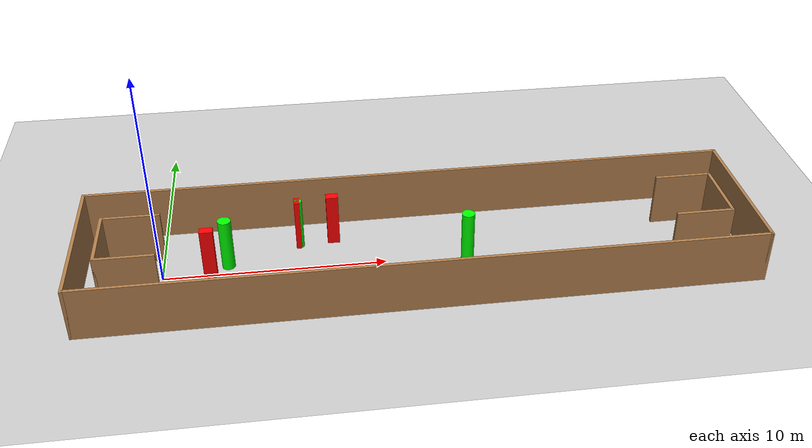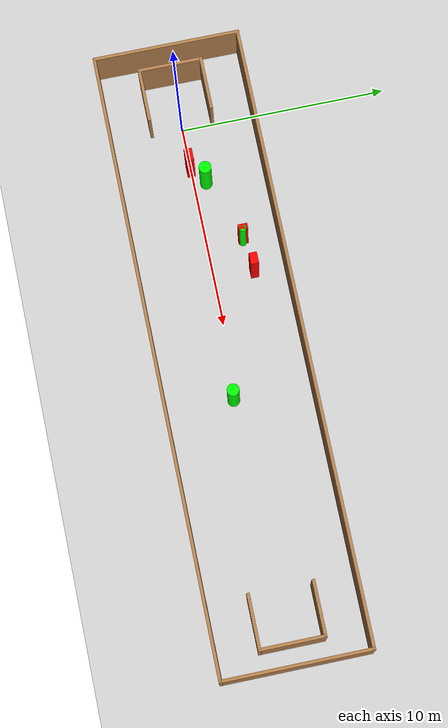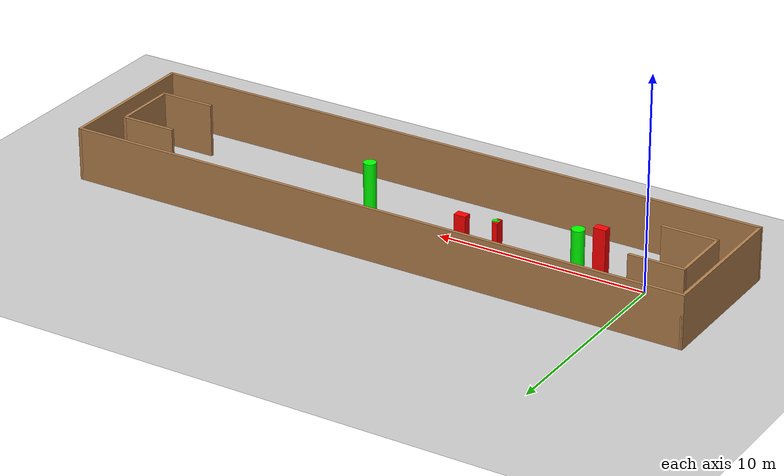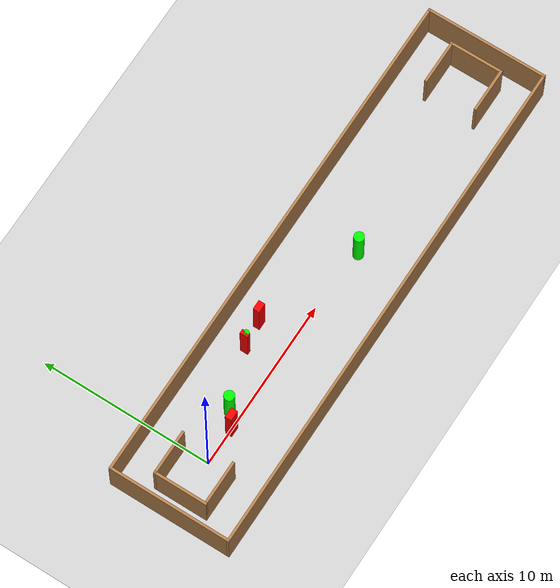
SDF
<sdf version="1.7">
 <world name="default">
  <light name="sun" type="directional">
   <pose>0 0 10 0 -0 0</pose>
   <diffuse>0.8 0.8 0.8 1</diffuse>
   <specular>0.2 0.2 0.2 1</specular>
   <attenuation>
    <range>1000</range>
    <constant>0.9</constant>
    <linear>0.01</linear>
    <quadratic>0.001</quadratic>
   </attenuation>
   <direction>-0.5 0.1 -0.9</direction>
   <spot><inner_angle>0</inner_angle><outer_angle>0</outer_angle><falloff>0</falloff></spot>
  </light>
  <model name="ground_plane">
   <static>1</static>
   <link name="link">
    <collision name="collision">
     <geometry><plane><normal>0 0 1</normal><size>100 100</size></plane></geometry>
     <surface>
      <contact><collide_bitmask>65535</collide_bitmask></contact>
      <friction><ode><mu>100</mu><mu2>50</mu2></ode></friction>
     </surface>
    </collision>
    <visual name="visual">
     <cast_shadows>0</cast_shadows>
     <geometry><plane><normal>0 0 1</normal><size>100 100</size></plane></geometry>
     <material>
      <script><uri>file://media/materials/scripts/gazebo.material</uri><name>Gazebo/Grey</name></script>
     </material>
    </visual>
   </link>
  </model>
  <gravity>0 0 -9.8</gravity>
  <magnetic_field>6e-06 2.3e-05 -4.2e-05</magnetic_field>
  <atmosphere type="adiabatic"/>
  <physics type="ode">
   <max_step_size>0.001</max_step_size>
   <real_time_factor>1</real_time_factor>
   <real_time_update_rate>1000</real_time_update_rate>
  </physics>
  <scene><ambient>0.4 0.4 0.4 1</ambient><background>0.7 0.7 0.7 1</background><shadows>1</shadows></scene>
  <spherical_coordinates>
   <surface_model>EARTH_WGS84</surface_model>
   <latitude_deg>0</latitude_deg>
   <longitude_deg>0</longitude_deg>
   <elevation>0</elevation>
   <heading_deg>0</heading_deg>
  </spherical_coordinates>
  <model name="my_base_walls">
   <link name="Wall_0">
    <collision name="Wall_0_Collision">
     <geometry><box><size>7.15 0.15 2.5</size></box></geometry>
     <pose>0 0 1.25 0 -0 0</pose>
    </collision>
    <visual name="Wall_0_Visual">
     <pose>0 0 1.25 0 -0 0</pose>
     <geometry><box><size>7.15 0.15 2.5</size></box></geometry>
     <material>
      <script><uri>file://media/materials/scripts/gazebo.material</uri><name>Gazebo/Wood</name></script>
      <ambient>1 1 1 1</ambient>
     </material>
     <meta><layer>0</layer></meta>
    </visual>
    <pose>-15 0 0 0 -0 1.5708</pose>
   </link>
   <link name="Wall_10">
    <collision name="Wall_10_Collision">
     <geometry><box><size>2.65 0.15 2.5</size></box></geometry>
     <pose>0 0 1.25 0 -0 0</pose>
    </collision>
    <visual name="Wall_10_Visual">
     <pose>0 0 1.25 0 -0 0</pose>
     <geometry><box><size>2.65 0.15 2.5</size></box></geometry>
     <material>
      <script><uri>file://media/materials/scripts/gazebo.material</uri><name>Gazebo/Wood</name></script>
      <ambient>1 1 1 1</ambient>
     </material>
     <meta><layer>0</layer></meta>
    </visual>
    <pose>-12.75 -1.5 0 0 -0 0</pose>
   </link>
   <link name="Wall_12">
    <collision name="Wall_12_Collision">
     <geometry><box><size>2.65 0.15 2.5</size></box></geometry>
     <pose>0 0 1.25 0 -0 0</pose>
    </collision>
    <visual name="Wall_12_Visual">
     <pose>0 0 1.25 0 -0 0</pose>
     <geometry><box><size>2.65 0.15 2.5</size></box></geometry>
     <material>
      <script><uri>file://media/materials/scripts/gazebo.material</uri><name>Gazebo/Wood</name></script>
      <ambient>1 1 1 1</ambient>
     </material>
     <meta><layer>0</layer></meta>
    </visual>
    <pose>-12.75 1.5 0 0 -0 0</pose>
   </link>
   <link name="Wall_14">
    <collision name="Wall_14_Collision">
     <geometry><box><size>3.15 0.15 2.5</size></box></geometry>
     <pose>0 0 1.25 0 -0 0</pose>
    </collision>
    <visual name="Wall_14_Visual">
     <pose>0 0 1.25 0 -0 0</pose>
     <geometry><box><size>3.15 0.15 2.5</size></box></geometry>
     <material>
      <script><uri>file://media/materials/scripts/gazebo.material</uri><name>Gazebo/Wood</name></script>
      <ambient>1 1 1 1</ambient>
     </material>
     <meta><layer>0</layer></meta>
    </visual>
    <pose>14 0 0 0 -0 -1.5708</pose>
   </link>
   <link name="Wall_15">
    <collision name="Wall_15_Collision">
     <geometry><box><size>2.65 0.15 2.5</size></box></geometry>
     <pose>0 0 1.25 0 -0 0</pose>
    </collision>
    <visual name="Wall_15_Visual">
     <pose>0 0 1.25 0 -0 0</pose>
     <geometry><box><size>2.65 0.15 2.5</size></box></geometry>
     <material>
      <script><uri>file://media/materials/scripts/gazebo.material</uri><name>Gazebo/Wood</name></script>
      <ambient>1 1 1 1</ambient>
     </material>
     <meta><layer>0</layer></meta>
    </visual>
    <pose>12.75 -1.5 0 0 -0 3.14159</pose>
   </link>
   <link name="Wall_17">
    <collision name="Wall_17_Collision">
     <geometry><box><size>2.65 0.15 2.5</size></box></geometry>
     <pose>0 0 1.25 0 -0 0</pose>
    </collision>
    <visual name="Wall_17_Visual">
     <pose>0 0 1.25 0 -0 0</pose>
     <geometry><box><size>2.65 0.15 2.5</size></box></geometry>
     <material>
      <script><uri>file://media/materials/scripts/gazebo.material</uri><name>Gazebo/Wood</name></script>
      <ambient>1 1 1 1</ambient>
     </material>
     <meta><layer>0</layer></meta>
    </visual>
    <pose>12.75 1.5 0 0 -0 3.14159</pose>
   </link>
   <link name="Wall_2">
    <collision name="Wall_2_Collision">
     <geometry><box><size>30.15 0.15 2.5</size></box></geometry>
     <pose>0 0 1.25 0 -0 0</pose>
    </collision>
    <visual name="Wall_2_Visual">
     <pose>0 0 1.25 0 -0 0</pose>
     <geometry><box><size>30.15 0.15 2.5</size></box></geometry>
     <material>
      <script><uri>file://media/materials/scripts/gazebo.material</uri><name>Gazebo/Wood</name></script>
      <ambient>1 1 1 1</ambient>
     </material>
     <meta><layer>0</layer></meta>
    </visual>
    <pose>-0 -3.5 0 0 -0 0</pose>
   </link>
   <link name="Wall_4">
    <collision name="Wall_4_Collision">
     <geometry><box><size>30.15 0.15 2.5</size></box></geometry>
     <pose>0 0 1.25 0 -0 0</pose>
    </collision>
    <visual name="Wall_4_Visual">
     <pose>0 0 1.25 0 -0 0</pose>
     <geometry><box><size>30.15 0.15 2.5</size></box></geometry>
     <material>
      <script><uri>file://media/materials/scripts/gazebo.material</uri><name>Gazebo/Wood</name></script>
      <ambient>1 1 1 1</ambient>
     </material>
     <meta><layer>0</layer></meta>
    </visual>
    <pose>-0 3.5 0 0 -0 0</pose>
   </link>
   <link name="Wall_6">
    <collision name="Wall_6_Collision">
     <geometry><box><size>7.15 0.15 2.5</size></box></geometry>
     <pose>0 0 1.25 0 -0 0</pose>
    </collision>
    <visual name="Wall_6_Visual">
     <pose>0 0 1.25 0 -0 0</pose>
     <geometry><box><size>7.15 0.15 2.5</size></box></geometry>
     <material>
      <script><uri>file://media/materials/scripts/gazebo.material</uri><name>Gazebo/Wood</name></script>
      <ambient>1 1 1 1</ambient>
     </material>
     <meta><layer>0</layer></meta>
    </visual>
    <pose>15 0 0 0 -0 -1.5708</pose>
   </link>
   <link name="Wall_9">
    <collision name="Wall_9_Collision">
     <geometry><box><size>3.15 0.15 2.5</size></box></geometry>
     <pose>0 0 1.25 0 -0 0</pose>
    </collision>
    <visual name="Wall_9_Visual">
     <pose>0 0 1.25 0 -0 0</pose>
     <geometry><box><size>3.15 0.15 2.5</size></box></geometry>
     <material>
      <script><uri>file://media/materials/scripts/gazebo.material</uri><name>Gazebo/Wood</name></script>
      <ambient>1 1 1 1</ambient>
     </material>
     <meta><layer>0</layer></meta>
    </visual>
    <pose>-14 0 0 0 -0 -1.5708</pose>
   </link>
   <static>1</static>
   <pose>11.5 0 0 0 -0 0</pose>
  </model>
  <model name="cylinder1">
   <static>1</static>
   <link name="link">
    <inertial>
     <mass>1</mass>
     <inertia><ixx>0.5</ixx><ixy>0</ixy><ixz>0</ixz><iyy>0.5</iyy><iyz>0</iyz><izz>1</izz></inertia>
    </inertial>
    <collision name="collision">
     <geometry><cylinder><radius>0.29654566401113147</radius><length>2.5</length></cylinder></geometry>
    </collision>
    <visual name="visual">
     <geometry><cylinder><radius>0.29654566401113147</radius><length>2.5</length></cylinder></geometry>
     <material>
      <ambient>0 1 0 1</ambient>
      <diffuse>0 1 0 1</diffuse>
      <specular>0.1 0.1 0.1 1</specular>
      <emissive>0 0 0 0</emissive>
     </material>
    </visual>
   </link>
   <pose>2.9029696508934926 0.6096929878355297 1.25 0 0 0</pose>
  </model>
  <model name="cylinder2">
   <static>1</static>
   <link name="link">
    <inertial>
     <mass>1</mass>
     <inertia><ixx>0.5</ixx><ixy>0</ixy><ixz>0</ixz><iyy>0.5</iyy><iyz>0</iyz><izz>1</izz></inertia>
    </inertial>
    <collision name="collision">
     <geometry><cylinder><radius>0.291980390848823</radius><length>2.5</length></cylinder></geometry>
    </collision>
    <visual name="visual">
     <geometry><cylinder><radius>0.291980390848823</radius><length>2.5</length></cylinder></geometry>
     <material>
      <ambient>0 1 0 1</ambient>
      <diffuse>0 1 0 1</diffuse>
      <specular>0.1 0.1 0.1 1</specular>
      <emissive>0 0 0 0</emissive>
     </material>
    </visual>
   </link>
   <pose>13.70140942446685 -0.2642160594069525 1.25 0 0 0</pose>
  </model>
  <model name="cylinder3">
   <static>1</static>
   <link name="link">
    <inertial>
     <mass>1</mass>
     <inertia><ixx>0.5</ixx><ixy>0</ixy><ixz>0</ixz><iyy>0.5</iyy><iyz>0</iyz><izz>1</izz></inertia>
    </inertial>
    <collision name="collision">
     <geometry><cylinder><radius>0.1699736142334531</radius><length>2.5</length></cylinder></geometry>
    </collision>
    <visual name="visual">
     <geometry><cylinder><radius>0.1699736142334531</radius><length>2.5</length></cylinder></geometry>
     <material>
      <ambient>0 1 0 1</ambient>
      <diffuse>0 1 0 1</diffuse>
      <specular>0.1 0.1 0.1 1</specular>
      <emissive>0 0 0 0</emissive>
     </material>
    </visual>
   </link>
   <pose>6.197409582891378 1.74036847698265 1.25 0 0 0</pose>
  </model>
  <model name="box1">
   <static>1</static>
   <link name="link">
    <inertial>
     <mass>1</mass>
     <inertia><ixx>0.083</ixx><ixy>0</ixy><ixz>0</ixz><iyy>0.083</iyy><iyz>0</iyz><izz>0.083</izz></inertia>
    </inertial>
    <collision name="collision">
     <geometry><box><size>0.24793129395400207 0.46219516737526123 2.5</size></box></geometry>
    </collision>
    <visual name="visual">
     <geometry><box><size>0.24793129395400207 0.46219516737526123 2.5</size></box></geometry>
     <material>
      <ambient>1 0 0 1</ambient>
      <diffuse>1 0 0 1</diffuse>
      <specular>0.1 0.1 0.1 1</specular>
      <emissive>0 0 0 0</emissive>
     </material>
    </visual>
    <sensor name="my_contact" type="contact">
     <contact><collision>box_collision</collision><topic>__default_topic__</topic></contact>
    </sensor>
   </link>
   <pose>6.1261638165726495 1.7652569280574202 1.25 0 0 0</pose>
  </model>
  <model name="box2">
   <static>1</static>
   <link name="link">
    <inertial>
     <mass>1</mass>
     <inertia><ixx>0.083</ixx><ixy>0</ixy><ixz>0</ixz><iyy>0.083</iyy><iyz>0</iyz><izz>0.083</izz></inertia>
    </inertial>
    <collision name="collision">
     <geometry><box><size>0.5909714281325373 0.384711289897111 2.5</size></box></geometry>
    </collision>
    <visual name="visual">
     <geometry><box><size>0.5909714281325373 0.384711289897111 2.5</size></box></geometry>
     <material>
      <ambient>1 0 0 1</ambient>
      <diffuse>1 0 0 1</diffuse>
      <specular>0.1 0.1 0.1 1</specular>
      <emissive>0 0 0 0</emissive>
     </material>
    </visual>
    <sensor name="my_contact" type="contact">
     <contact><collision>box_collision</collision><topic>__default_topic__</topic></contact>
    </sensor>
   </link>
   <pose>2.1327727854960443 -0.013773947900331152 1.25 0 0 0</pose>
  </model>
  <model name="box3">
   <static>1</static>
   <link name="link">
    <inertial>
     <mass>1</mass>
     <inertia><ixx>0.083</ixx><ixy>0</ixy><ixz>0</ixz><iyy>0.083</iyy><iyz>0</iyz><izz>0.083</izz></inertia>
    </inertial>
    <collision name="collision">
     <geometry><box><size>0.5582969043822772 0.37887843129988497 2.5</size></box></geometry>
    </collision>
    <visual name="visual">
     <geometry><box><size>0.5582969043822772 0.37887843129988497 2.5</size></box></geometry>
     <material>
      <ambient>1 0 0 1</ambient>
      <diffuse>1 0 0 1</diffuse>
      <specular>0.1 0.1 0.1 1</specular>
      <emissive>0 0 0 0</emissive>
     </material>
    </visual>
    <sensor name="my_contact" type="contact">
     <contact><collision>box_collision</collision><topic>__default_topic__</topic></contact>
    </sensor>
   </link>
   <pose>7.740769700189759 1.9581590188157225 1.25 0 0 0</pose>
  </model>
 </world>
</sdf>
